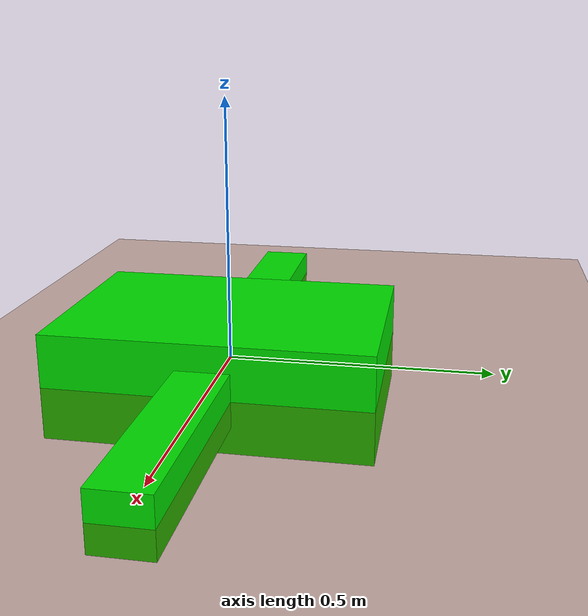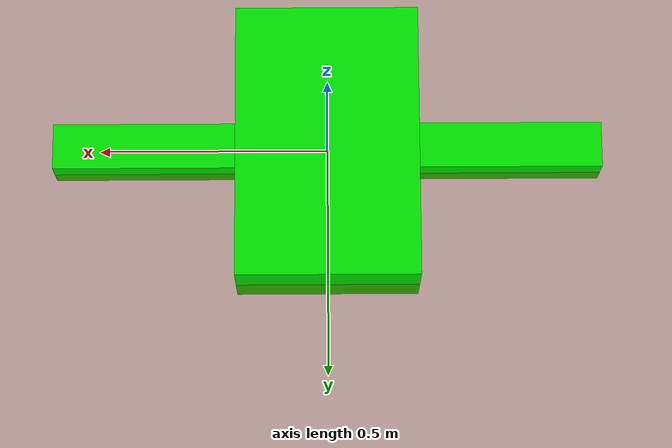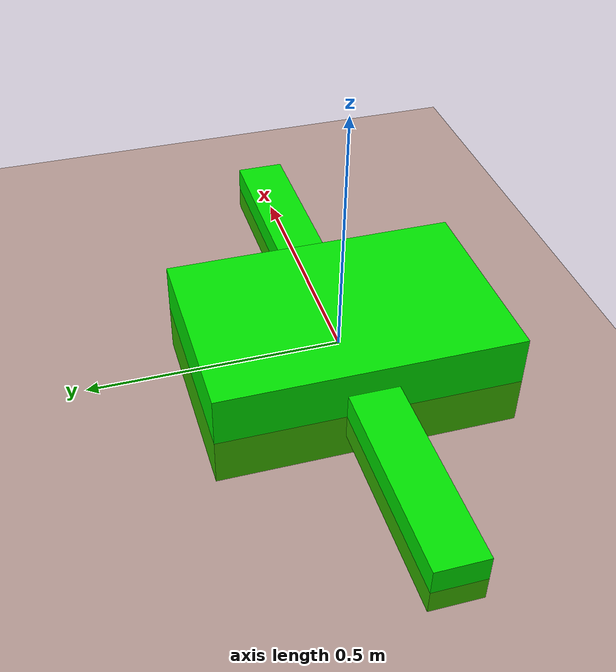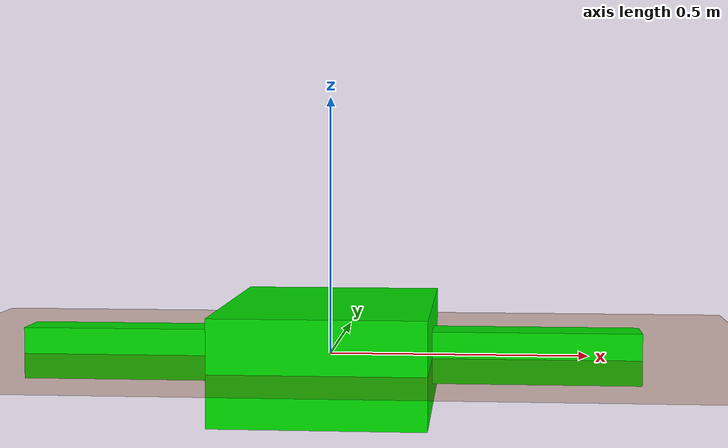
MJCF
<mujoco>
  <worldbody>
    <light diffuse=".5 .5 .5" pos="0 0 2" dir="0 -1 0" />
    <geom type="plane" size="10 10 0.1" rgba=".5 0.2 0 1" />
    <body name="unit0" pos="0 0 0" euler="0 0 0">
      <joint name="body_joint0" type="free" axis="0 0 0" pos="0 0 0" range="-5 5" />
      <body name="body0" pos="0 0 0" euler="0 0 0">
        <geom type="box" size=".2 .3 .1" rgba="0 .9 0 1" mass="2" />
      </body>
      <body name="body0leg1" pos=".4 0 0" euler="0 -90 90">
        <joint name="body0j1" type="hinge" axis="0 1 0" pos="0 0 .25" range="-30 30" />
        <geom type="box" size=".05 .05 .2" rgba="0 .9 0 1" mass="1" />
      </body>
      <body name="body0leg2" pos="-.4 0 0" euler="0 90 -90">
        <joint name="body0j2" type="hinge" axis="0 1 0" pos="0 0 .25" range="-30 30" />
        <geom type="box" size=".05 .05 .2" rgba="0 .9 0 1" mass="1" />
      </body>
    </body>
  </worldbody>
  <actuator>
    <motor joint="body0j1" name="m_body0j1" gear="5" ctrllimited="true" ctrlrange="-5 5" />
    <motor joint="body0j2" name="m_body0j2" gear="5" ctrllimited="true" ctrlrange="-5 5" />
  </actuator>
</mujoco>
